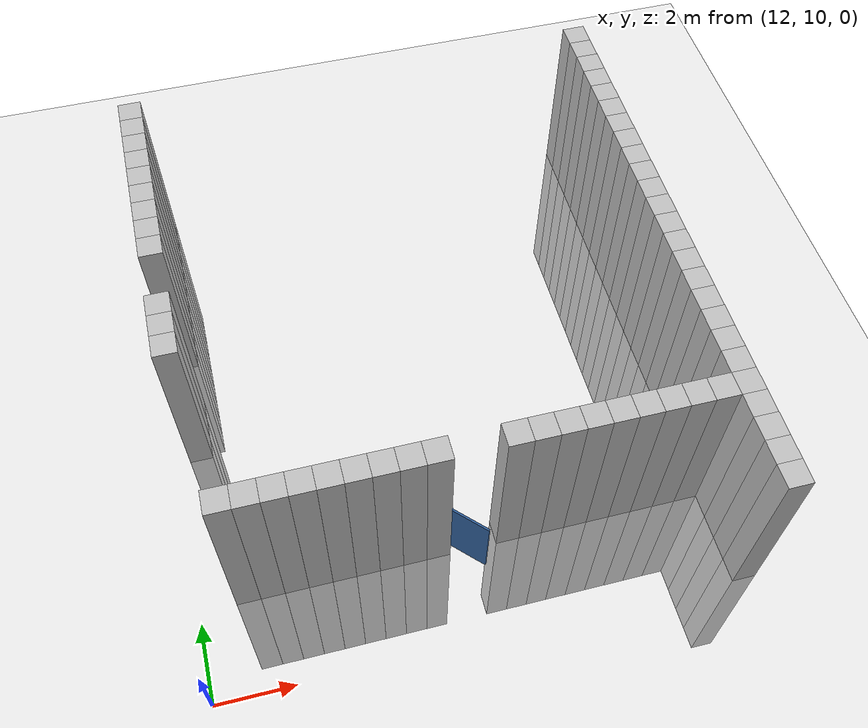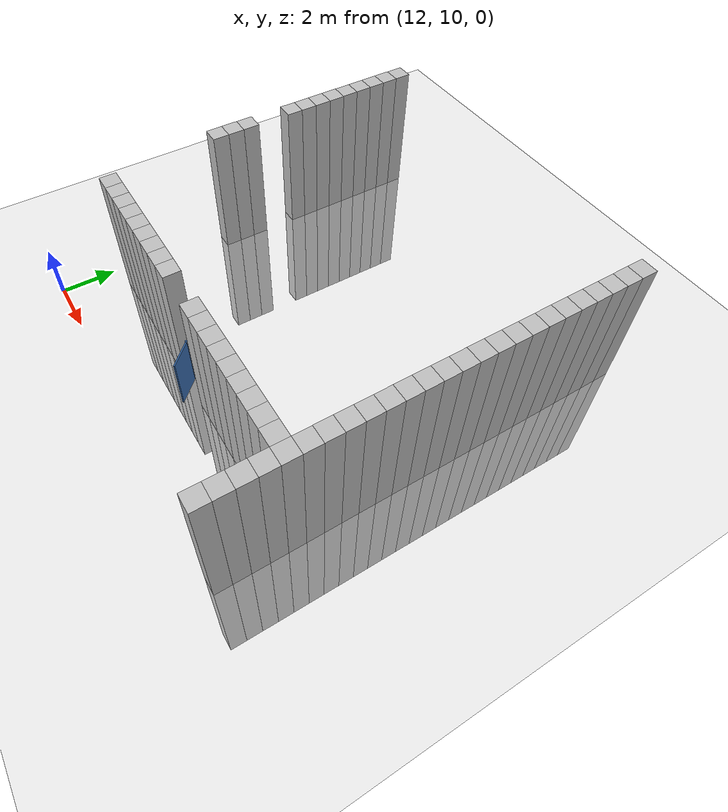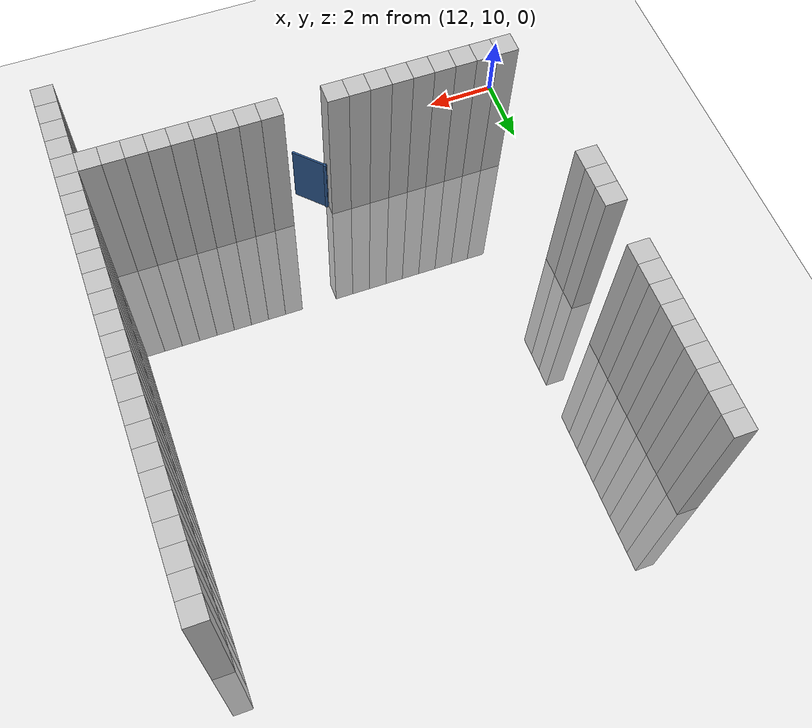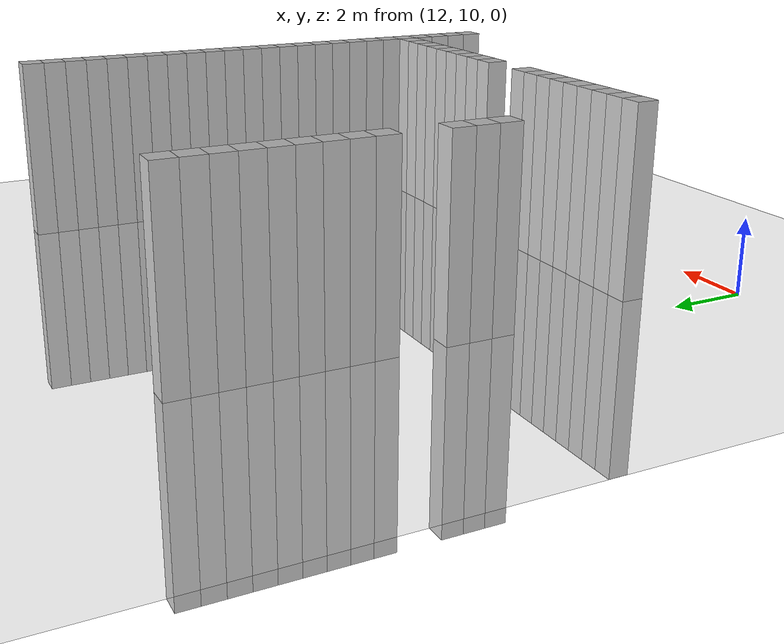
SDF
<sdf version="1.6">
 <world name="default">
  <model name="ground_plane">
   <static>1</static>
   <link name="link">
    <collision name="collision">
     <geometry><plane><normal>0 0 1</normal><size>100 100</size></plane></geometry>
     <surface><friction><ode><mu>100</mu><mu2>50</mu2></ode></friction></surface>
    </collision>
    <visual name="visual">
     <cast_shadows>0</cast_shadows>
     <geometry><plane><normal>0 0 1</normal><size>100 100</size></plane></geometry>
     <material>
      <script><uri>file://media/materials/scripts/gazebo.material</uri><name>Gazebo/Grey</name></script>
     </material>
    </visual>
   </link>
  </model>
  <model name="unit_cylinder_131">
   <static>1</static>
   <pose>12.6 16.8 0 0 -0 0</pose>
   <link name="link">
    <inertial>
     <mass>1</mass>
     <inertia><ixx>0.145833</ixx><ixy>0</ixy><ixz>0</ixz><iyy>0.145833</iyy><iyz>0</iyz><izz>0.125</izz></inertia>
    </inertial>
    <collision name="collision"><geometry><box><size>0.6 0.6 10</size></box></geometry></collision>
    <visual name="visual">
     <geometry><box><size>0.6 0.6 10</size></box></geometry>
     <material><ambient>0.753 0.753 0.753 1</ambient><diffuse>0.753 0.753 0.753 1</diffuse></material>
     <material>
      <script><name>Gazebo/Grey</name><uri>file://media/materials/scripts/gazebo.material</uri></script>
     </material>
    </visual>
   </link>
  </model>
  <model name="unit_cylinder_132">
   <static>1</static>
   <pose>12.6 17.4 0 0 -0 0</pose>
   <link name="link">
    <inertial>
     <mass>1</mass>
     <inertia><ixx>0.145833</ixx><ixy>0</ixy><ixz>0</ixz><iyy>0.145833</iyy><iyz>0</iyz><izz>0.125</izz></inertia>
    </inertial>
    <collision name="collision"><geometry><box><size>0.6 0.6 10</size></box></geometry></collision>
    <visual name="visual">
     <geometry><box><size>0.6 0.6 10</size></box></geometry>
     <material><ambient>0.753 0.753 0.753 1</ambient><diffuse>0.753 0.753 0.753 1</diffuse></material>
     <material>
      <script><name>Gazebo/Grey</name><uri>file://media/materials/scripts/gazebo.material</uri></script>
     </material>
    </visual>
   </link>
  </model>
  <model name="unit_cylinder_133">
   <static>1</static>
   <pose>12.6 18 0 0 -0 0</pose>
   <link name="link">
    <inertial>
     <mass>1</mass>
     <inertia><ixx>0.145833</ixx><ixy>0</ixy><ixz>0</ixz><iyy>0.145833</iyy><iyz>0</iyz><izz>0.125</izz></inertia>
    </inertial>
    <collision name="collision"><geometry><box><size>0.6 0.6 10</size></box></geometry></collision>
    <visual name="visual">
     <geometry><box><size>0.6 0.6 10</size></box></geometry>
     <material><ambient>0.753 0.753 0.753 1</ambient><diffuse>0.753 0.753 0.753 1</diffuse></material>
     <material>
      <script><name>Gazebo/Grey</name><uri>file://media/materials/scripts/gazebo.material</uri></script>
     </material>
    </visual>
   </link>
  </model>
  <model name="unit_cylinder_136">
   <static>1</static>
   <pose>12.6 19.8 0 0 -0 0</pose>
   <link name="link">
    <inertial>
     <mass>1</mass>
     <inertia><ixx>0.145833</ixx><ixy>0</ixy><ixz>0</ixz><iyy>0.145833</iyy><iyz>0</iyz><izz>0.125</izz></inertia>
    </inertial>
    <collision name="collision"><geometry><box><size>0.6 0.6 10</size></box></geometry></collision>
    <visual name="visual">
     <geometry><box><size>0.6 0.6 10</size></box></geometry>
     <material><ambient>0.753 0.753 0.753 1</ambient><diffuse>0.753 0.753 0.753 1</diffuse></material>
     <material>
      <script><name>Gazebo/Grey</name><uri>file://media/materials/scripts/gazebo.material</uri></script>
     </material>
    </visual>
   </link>
  </model>
  <model name="unit_cylinder_137">
   <static>1</static>
   <pose>12.6 20.4 0 0 -0 0</pose>
   <link name="link">
    <inertial>
     <mass>1</mass>
     <inertia><ixx>0.145833</ixx><ixy>0</ixy><ixz>0</ixz><iyy>0.145833</iyy><iyz>0</iyz><izz>0.125</izz></inertia>
    </inertial>
    <collision name="collision"><geometry><box><size>0.6 0.6 10</size></box></geometry></collision>
    <visual name="visual">
     <geometry><box><size>0.6 0.6 10</size></box></geometry>
     <material><ambient>0.753 0.753 0.753 1</ambient><diffuse>0.753 0.753 0.753 1</diffuse></material>
     <material>
      <script><name>Gazebo/Grey</name><uri>file://media/materials/scripts/gazebo.material</uri></script>
     </material>
    </visual>
   </link>
  </model>
  <model name="unit_cylinder_138">
   <static>1</static>
   <pose>12.6 21 0 0 -0 0</pose>
   <link name="link">
    <inertial>
     <mass>1</mass>
     <inertia><ixx>0.145833</ixx><ixy>0</ixy><ixz>0</ixz><iyy>0.145833</iyy><iyz>0</iyz><izz>0.125</izz></inertia>
    </inertial>
    <collision name="collision"><geometry><box><size>0.6 0.6 10</size></box></geometry></collision>
    <visual name="visual">
     <geometry><box><size>0.6 0.6 10</size></box></geometry>
     <material><ambient>0.753 0.753 0.753 1</ambient><diffuse>0.753 0.753 0.753 1</diffuse></material>
     <material>
      <script><name>Gazebo/Grey</name><uri>file://media/materials/scripts/gazebo.material</uri></script>
     </material>
    </visual>
   </link>
  </model>
  <model name="unit_cylinder_139">
   <static>1</static>
   <pose>12.6 21.6 0 0 -0 0</pose>
   <link name="link">
    <inertial>
     <mass>1</mass>
     <inertia><ixx>0.145833</ixx><ixy>0</ixy><ixz>0</ixz><iyy>0.145833</iyy><iyz>0</iyz><izz>0.125</izz></inertia>
    </inertial>
    <collision name="collision"><geometry><box><size>0.6 0.6 10</size></box></geometry></collision>
    <visual name="visual">
     <geometry><box><size>0.6 0.6 10</size></box></geometry>
     <material><ambient>0.753 0.753 0.753 1</ambient><diffuse>0.753 0.753 0.753 1</diffuse></material>
     <material>
      <script><name>Gazebo/Grey</name><uri>file://media/materials/scripts/gazebo.material</uri></script>
     </material>
    </visual>
   </link>
  </model>
  <model name="unit_cylinder_140">
   <static>1</static>
   <pose>12.6 22.2 0 0 -0 0</pose>
   <link name="link">
    <inertial>
     <mass>1</mass>
     <inertia><ixx>0.145833</ixx><ixy>0</ixy><ixz>0</ixz><iyy>0.145833</iyy><iyz>0</iyz><izz>0.125</izz></inertia>
    </inertial>
    <collision name="collision"><geometry><box><size>0.6 0.6 10</size></box></geometry></collision>
    <visual name="visual">
     <geometry><box><size>0.6 0.6 10</size></box></geometry>
     <material><ambient>0.753 0.753 0.753 1</ambient><diffuse>0.753 0.753 0.753 1</diffuse></material>
     <material>
      <script><name>Gazebo/Grey</name><uri>file://media/materials/scripts/gazebo.material</uri></script>
     </material>
    </visual>
   </link>
  </model>
  <model name="unit_cylinder_141">
   <static>1</static>
   <pose>12.6 22.8 0 0 -0 0</pose>
   <link name="link">
    <inertial>
     <mass>1</mass>
     <inertia><ixx>0.145833</ixx><ixy>0</ixy><ixz>0</ixz><iyy>0.145833</iyy><iyz>0</iyz><izz>0.125</izz></inertia>
    </inertial>
    <collision name="collision"><geometry><box><size>0.6 0.6 10</size></box></geometry></collision>
    <visual name="visual">
     <geometry><box><size>0.6 0.6 10</size></box></geometry>
     <material><ambient>0.753 0.753 0.753 1</ambient><diffuse>0.753 0.753 0.753 1</diffuse></material>
     <material>
      <script><name>Gazebo/Grey</name><uri>file://media/materials/scripts/gazebo.material</uri></script>
     </material>
    </visual>
   </link>
  </model>
  <model name="unit_cylinder_142">
   <static>1</static>
   <pose>12.6 23.4 0 0 -0 0</pose>
   <link name="link">
    <inertial>
     <mass>1</mass>
     <inertia><ixx>0.145833</ixx><ixy>0</ixy><ixz>0</ixz><iyy>0.145833</iyy><iyz>0</iyz><izz>0.125</izz></inertia>
    </inertial>
    <collision name="collision"><geometry><box><size>0.6 0.6 10</size></box></geometry></collision>
    <visual name="visual">
     <geometry><box><size>0.6 0.6 10</size></box></geometry>
     <material><ambient>0.753 0.753 0.753 1</ambient><diffuse>0.753 0.753 0.753 1</diffuse></material>
     <material>
      <script><name>Gazebo/Grey</name><uri>file://media/materials/scripts/gazebo.material</uri></script>
     </material>
    </visual>
   </link>
  </model>
  <model name="unit_cylinder_143">
   <static>1</static>
   <pose>12.6 24 0 0 -0 0</pose>
   <link name="link">
    <inertial>
     <mass>1</mass>
     <inertia><ixx>0.145833</ixx><ixy>0</ixy><ixz>0</ixz><iyy>0.145833</iyy><iyz>0</iyz><izz>0.125</izz></inertia>
    </inertial>
    <collision name="collision"><geometry><box><size>0.6 0.6 10</size></box></geometry></collision>
    <visual name="visual">
     <geometry><box><size>0.6 0.6 10</size></box></geometry>
     <material><ambient>0.753 0.753 0.753 1</ambient><diffuse>0.753 0.753 0.753 1</diffuse></material>
     <material>
      <script><name>Gazebo/Grey</name><uri>file://media/materials/scripts/gazebo.material</uri></script>
     </material>
    </visual>
   </link>
  </model>
  <model name="unit_cylinder_144">
   <static>1</static>
   <pose>12.6 24.6 0 0 -0 0</pose>
   <link name="link">
    <inertial>
     <mass>1</mass>
     <inertia><ixx>0.145833</ixx><ixy>0</ixy><ixz>0</ixz><iyy>0.145833</iyy><iyz>0</iyz><izz>0.125</izz></inertia>
    </inertial>
    <collision name="collision"><geometry><box><size>0.6 0.6 10</size></box></geometry></collision>
    <visual name="visual">
     <geometry><box><size>0.6 0.6 10</size></box></geometry>
     <material><ambient>0.753 0.753 0.753 1</ambient><diffuse>0.753 0.753 0.753 1</diffuse></material>
     <material>
      <script><name>Gazebo/Grey</name><uri>file://media/materials/scripts/gazebo.material</uri></script>
     </material>
    </visual>
   </link>
  </model>
  <model name="unit_cylinder_147">
   <static>1</static>
   <pose>13.2 12.6 0 0 -0 0</pose>
   <link name="link">
    <inertial>
     <mass>1</mass>
     <inertia><ixx>0.145833</ixx><ixy>0</ixy><ixz>0</ixz><iyy>0.145833</iyy><iyz>0</iyz><izz>0.125</izz></inertia>
    </inertial>
    <collision name="collision"><geometry><box><size>0.6 0.6 10</size></box></geometry></collision>
    <visual name="visual">
     <geometry><box><size>0.6 0.6 10</size></box></geometry>
     <material><ambient>0.753 0.753 0.753 1</ambient><diffuse>0.753 0.753 0.753 1</diffuse></material>
     <material>
      <script><name>Gazebo/Grey</name><uri>file://media/materials/scripts/gazebo.material</uri></script>
     </material>
    </visual>
   </link>
  </model>
  <model name="unit_cylinder_150">
   <static>1</static>
   <pose>13.8 12.6 0 0 -0 0</pose>
   <link name="link">
    <inertial>
     <mass>1</mass>
     <inertia><ixx>0.145833</ixx><ixy>0</ixy><ixz>0</ixz><iyy>0.145833</iyy><iyz>0</iyz><izz>0.125</izz></inertia>
    </inertial>
    <collision name="collision"><geometry><box><size>0.6 0.6 10</size></box></geometry></collision>
    <visual name="visual">
     <geometry><box><size>0.6 0.6 10</size></box></geometry>
     <material><ambient>0.753 0.753 0.753 1</ambient><diffuse>0.753 0.753 0.753 1</diffuse></material>
     <material>
      <script><name>Gazebo/Grey</name><uri>file://media/materials/scripts/gazebo.material</uri></script>
     </material>
    </visual>
   </link>
  </model>
  <model name="unit_cylinder_153">
   <static>1</static>
   <pose>14.4 12.6 0 0 -0 0</pose>
   <link name="link">
    <inertial>
     <mass>1</mass>
     <inertia><ixx>0.145833</ixx><ixy>0</ixy><ixz>0</ixz><iyy>0.145833</iyy><iyz>0</iyz><izz>0.125</izz></inertia>
    </inertial>
    <collision name="collision"><geometry><box><size>0.6 0.6 10</size></box></geometry></collision>
    <visual name="visual">
     <geometry><box><size>0.6 0.6 10</size></box></geometry>
     <material><ambient>0.753 0.753 0.753 1</ambient><diffuse>0.753 0.753 0.753 1</diffuse></material>
     <material>
      <script><name>Gazebo/Grey</name><uri>file://media/materials/scripts/gazebo.material</uri></script>
     </material>
    </visual>
   </link>
  </model>
  <model name="unit_cylinder_156">
   <static>1</static>
   <pose>15 12.6 0 0 -0 0</pose>
   <link name="link">
    <inertial>
     <mass>1</mass>
     <inertia><ixx>0.145833</ixx><ixy>0</ixy><ixz>0</ixz><iyy>0.145833</iyy><iyz>0</iyz><izz>0.125</izz></inertia>
    </inertial>
    <collision name="collision"><geometry><box><size>0.6 0.6 10</size></box></geometry></collision>
    <visual name="visual">
     <geometry><box><size>0.6 0.6 10</size></box></geometry>
     <material><ambient>0.753 0.753 0.753 1</ambient><diffuse>0.753 0.753 0.753 1</diffuse></material>
     <material>
      <script><name>Gazebo/Grey</name><uri>file://media/materials/scripts/gazebo.material</uri></script>
     </material>
    </visual>
   </link>
  </model>
  <model name="unit_cylinder_159">
   <static>1</static>
   <pose>15.6 12.6 0 0 -0 0</pose>
   <link name="link">
    <inertial>
     <mass>1</mass>
     <inertia><ixx>0.145833</ixx><ixy>0</ixy><ixz>0</ixz><iyy>0.145833</iyy><iyz>0</iyz><izz>0.125</izz></inertia>
    </inertial>
    <collision name="collision"><geometry><box><size>0.6 0.6 10</size></box></geometry></collision>
    <visual name="visual">
     <geometry><box><size>0.6 0.6 10</size></box></geometry>
     <material><ambient>0.753 0.753 0.753 1</ambient><diffuse>0.753 0.753 0.753 1</diffuse></material>
     <material>
      <script><name>Gazebo/Grey</name><uri>file://media/materials/scripts/gazebo.material</uri></script>
     </material>
    </visual>
   </link>
  </model>
  <model name="unit_cylinder_162">
   <static>1</static>
   <pose>16.2 12.6 0 0 -0 0</pose>
   <link name="link">
    <inertial>
     <mass>1</mass>
     <inertia><ixx>0.145833</ixx><ixy>0</ixy><ixz>0</ixz><iyy>0.145833</iyy><iyz>0</iyz><izz>0.125</izz></inertia>
    </inertial>
    <collision name="collision"><geometry><box><size>0.6 0.6 10</size></box></geometry></collision>
    <visual name="visual">
     <geometry><box><size>0.6 0.6 10</size></box></geometry>
     <material><ambient>0.753 0.753 0.753 1</ambient><diffuse>0.753 0.753 0.753 1</diffuse></material>
     <material>
      <script><name>Gazebo/Grey</name><uri>file://media/materials/scripts/gazebo.material</uri></script>
     </material>
    </visual>
   </link>
  </model>
  <model name="unit_cylinder_165">
   <static>1</static>
   <pose>16.8 12.6 0 0 -0 0</pose>
   <link name="link">
    <inertial>
     <mass>1</mass>
     <inertia><ixx>0.145833</ixx><ixy>0</ixy><ixz>0</ixz><iyy>0.145833</iyy><iyz>0</iyz><izz>0.125</izz></inertia>
    </inertial>
    <collision name="collision"><geometry><box><size>0.6 0.6 10</size></box></geometry></collision>
    <visual name="visual">
     <geometry><box><size>0.6 0.6 10</size></box></geometry>
     <material><ambient>0.753 0.753 0.753 1</ambient><diffuse>0.753 0.753 0.753 1</diffuse></material>
     <material>
      <script><name>Gazebo/Grey</name><uri>file://media/materials/scripts/gazebo.material</uri></script>
     </material>
    </visual>
   </link>
  </model>
  <model name="unit_cylinder_168">
   <static>1</static>
   <pose>17.4 12.6 0 0 -0 0</pose>
   <link name="link">
    <inertial>
     <mass>1</mass>
     <inertia><ixx>0.145833</ixx><ixy>0</ixy><ixz>0</ixz><iyy>0.145833</iyy><iyz>0</iyz><izz>0.125</izz></inertia>
    </inertial>
    <collision name="collision"><geometry><box><size>0.6 0.6 10</size></box></geometry></collision>
    <visual name="visual">
     <geometry><box><size>0.6 0.6 10</size></box></geometry>
     <material><ambient>0.753 0.753 0.753 1</ambient><diffuse>0.753 0.753 0.753 1</diffuse></material>
     <material>
      <script><name>Gazebo/Grey</name><uri>file://media/materials/scripts/gazebo.material</uri></script>
     </material>
    </visual>
   </link>
  </model>
  <model name="unit_cylinder_171">
   <static>1</static>
   <pose>18 12.6 0 0 -0 0</pose>
   <link name="link">
    <inertial>
     <mass>1</mass>
     <inertia><ixx>0.145833</ixx><ixy>0</ixy><ixz>0</ixz><iyy>0.145833</iyy><iyz>0</iyz><izz>0.125</izz></inertia>
    </inertial>
    <collision name="collision"><geometry><box><size>0.6 0.6 10</size></box></geometry></collision>
    <visual name="visual">
     <geometry><box><size>0.6 0.6 10</size></box></geometry>
     <material><ambient>0.753 0.753 0.753 1</ambient><diffuse>0.753 0.753 0.753 1</diffuse></material>
     <material>
      <script><name>Gazebo/Grey</name><uri>file://media/materials/scripts/gazebo.material</uri></script>
     </material>
    </visual>
   </link>
  </model>
  <model name="unit_cylinder_180">
   <static>1</static>
   <pose>19.8 12.6 0 0 -0 0</pose>
   <link name="link">
    <inertial>
     <mass>1</mass>
     <inertia><ixx>0.145833</ixx><ixy>0</ixy><ixz>0</ixz><iyy>0.145833</iyy><iyz>0</iyz><izz>0.125</izz></inertia>
    </inertial>
    <collision name="collision"><geometry><box><size>0.6 0.6 10</size></box></geometry></collision>
    <visual name="visual">
     <geometry><box><size>0.6 0.6 10</size></box></geometry>
     <material><ambient>0.753 0.753 0.753 1</ambient><diffuse>0.753 0.753 0.753 1</diffuse></material>
     <material>
      <script><name>Gazebo/Grey</name><uri>file://media/materials/scripts/gazebo.material</uri></script>
     </material>
    </visual>
   </link>
  </model>
  <model name="unit_cylinder_183">
   <static>1</static>
   <pose>20.4 12.6 0 0 -0 0</pose>
   <link name="link">
    <inertial>
     <mass>1</mass>
     <inertia><ixx>0.145833</ixx><ixy>0</ixy><ixz>0</ixz><iyy>0.145833</iyy><iyz>0</iyz><izz>0.125</izz></inertia>
    </inertial>
    <collision name="collision"><geometry><box><size>0.6 0.6 10</size></box></geometry></collision>
    <visual name="visual">
     <geometry><box><size>0.6 0.6 10</size></box></geometry>
     <material><ambient>0.753 0.753 0.753 1</ambient><diffuse>0.753 0.753 0.753 1</diffuse></material>
     <material>
      <script><name>Gazebo/Grey</name><uri>file://media/materials/scripts/gazebo.material</uri></script>
     </material>
    </visual>
   </link>
  </model>
  <model name="unit_cylinder_186">
   <static>1</static>
   <pose>21 12.6 0 0 -0 0</pose>
   <link name="link">
    <inertial>
     <mass>1</mass>
     <inertia><ixx>0.145833</ixx><ixy>0</ixy><ixz>0</ixz><iyy>0.145833</iyy><iyz>0</iyz><izz>0.125</izz></inertia>
    </inertial>
    <collision name="collision"><geometry><box><size>0.6 0.6 10</size></box></geometry></collision>
    <visual name="visual">
     <geometry><box><size>0.6 0.6 10</size></box></geometry>
     <material><ambient>0.753 0.753 0.753 1</ambient><diffuse>0.753 0.753 0.753 1</diffuse></material>
     <material>
      <script><name>Gazebo/Grey</name><uri>file://media/materials/scripts/gazebo.material</uri></script>
     </material>
    </visual>
   </link>
  </model>
  <model name="unit_cylinder_189">
   <static>1</static>
   <pose>21.6 12.6 0 0 -0 0</pose>
   <link name="link">
    <inertial>
     <mass>1</mass>
     <inertia><ixx>0.145833</ixx><ixy>0</ixy><ixz>0</ixz><iyy>0.145833</iyy><iyz>0</iyz><izz>0.125</izz></inertia>
    </inertial>
    <collision name="collision"><geometry><box><size>0.6 0.6 10</size></box></geometry></collision>
    <visual name="visual">
     <geometry><box><size>0.6 0.6 10</size></box></geometry>
     <material><ambient>0.753 0.753 0.753 1</ambient><diffuse>0.753 0.753 0.753 1</diffuse></material>
     <material>
      <script><name>Gazebo/Grey</name><uri>file://media/materials/scripts/gazebo.material</uri></script>
     </material>
    </visual>
   </link>
  </model>
  <model name="unit_cylinder_192">
   <static>1</static>
   <pose>22.2 12.6 0 0 -0 0</pose>
   <link name="link">
    <inertial>
     <mass>1</mass>
     <inertia><ixx>0.145833</ixx><ixy>0</ixy><ixz>0</ixz><iyy>0.145833</iyy><iyz>0</iyz><izz>0.125</izz></inertia>
    </inertial>
    <collision name="collision"><geometry><box><size>0.6 0.6 10</size></box></geometry></collision>
    <visual name="visual">
     <geometry><box><size>0.6 0.6 10</size></box></geometry>
     <material><ambient>0.753 0.753 0.753 1</ambient><diffuse>0.753 0.753 0.753 1</diffuse></material>
     <material>
      <script><name>Gazebo/Grey</name><uri>file://media/materials/scripts/gazebo.material</uri></script>
     </material>
    </visual>
   </link>
  </model>
  <model name="unit_cylinder_195">
   <static>1</static>
   <pose>22.8 12.6 0 0 -0 0</pose>
   <link name="link">
    <inertial>
     <mass>1</mass>
     <inertia><ixx>0.145833</ixx><ixy>0</ixy><ixz>0</ixz><iyy>0.145833</iyy><iyz>0</iyz><izz>0.125</izz></inertia>
    </inertial>
    <collision name="collision"><geometry><box><size>0.6 0.6 10</size></box></geometry></collision>
    <visual name="visual">
     <geometry><box><size>0.6 0.6 10</size></box></geometry>
     <material><ambient>0.753 0.753 0.753 1</ambient><diffuse>0.753 0.753 0.753 1</diffuse></material>
     <material>
      <script><name>Gazebo/Grey</name><uri>file://media/materials/scripts/gazebo.material</uri></script>
     </material>
    </visual>
   </link>
  </model>
  <model name="unit_cylinder_198">
   <static>1</static>
   <pose>23.4 12.6 0 0 -0 0</pose>
   <link name="link">
    <inertial>
     <mass>1</mass>
     <inertia><ixx>0.145833</ixx><ixy>0</ixy><ixz>0</ixz><iyy>0.145833</iyy><iyz>0</iyz><izz>0.125</izz></inertia>
    </inertial>
    <collision name="collision"><geometry><box><size>0.6 0.6 10</size></box></geometry></collision>
    <visual name="visual">
     <geometry><box><size>0.6 0.6 10</size></box></geometry>
     <material><ambient>0.753 0.753 0.753 1</ambient><diffuse>0.753 0.753 0.753 1</diffuse></material>
     <material>
      <script><name>Gazebo/Grey</name><uri>file://media/materials/scripts/gazebo.material</uri></script>
     </material>
    </visual>
   </link>
  </model>
  <model name="unit_cylinder_201">
   <static>1</static>
   <pose>24 12.6 0 0 -0 0</pose>
   <link name="link">
    <inertial>
     <mass>1</mass>
     <inertia><ixx>0.145833</ixx><ixy>0</ixy><ixz>0</ixz><iyy>0.145833</iyy><iyz>0</iyz><izz>0.125</izz></inertia>
    </inertial>
    <collision name="collision"><geometry><box><size>0.6 0.6 10</size></box></geometry></collision>
    <visual name="visual">
     <geometry><box><size>0.6 0.6 10</size></box></geometry>
     <material><ambient>0.753 0.753 0.753 1</ambient><diffuse>0.753 0.753 0.753 1</diffuse></material>
     <material>
      <script><name>Gazebo/Grey</name><uri>file://media/materials/scripts/gazebo.material</uri></script>
     </material>
    </visual>
   </link>
  </model>
  <model name="unit_cylinder_204">
   <static>1</static>
   <pose>24.6 12.6 0 0 -0 0</pose>
   <link name="link">
    <inertial>
     <mass>1</mass>
     <inertia><ixx>0.145833</ixx><ixy>0</ixy><ixz>0</ixz><iyy>0.145833</iyy><iyz>0</iyz><izz>0.125</izz></inertia>
    </inertial>
    <collision name="collision"><geometry><box><size>0.6 0.6 10</size></box></geometry></collision>
    <visual name="visual">
     <geometry><box><size>0.6 0.6 10</size></box></geometry>
     <material><ambient>0.753 0.753 0.753 1</ambient><diffuse>0.753 0.753 0.753 1</diffuse></material>
     <material>
      <script><name>Gazebo/Grey</name><uri>file://media/materials/scripts/gazebo.material</uri></script>
     </material>
    </visual>
   </link>
  </model>
  <model name="unit_cylinder_223">
   <static>1</static>
   <pose>25.2 10.2 0 0 -0 0</pose>
   <link name="link">
    <inertial>
     <mass>1</mass>
     <inertia><ixx>0.145833</ixx><ixy>0</ixy><ixz>0</ixz><iyy>0.145833</iyy><iyz>0</iyz><izz>0.125</izz></inertia>
    </inertial>
    <collision name="collision"><geometry><box><size>0.6 0.6 10</size></box></geometry></collision>
    <visual name="visual">
     <geometry><box><size>0.6 0.6 10</size></box></geometry>
     <material><ambient>0.753 0.753 0.753 1</ambient><diffuse>0.753 0.753 0.753 1</diffuse></material>
     <material>
      <script><name>Gazebo/Grey</name><uri>file://media/materials/scripts/gazebo.material</uri></script>
     </material>
    </visual>
   </link>
  </model>
  <model name="unit_cylinder_224">
   <static>1</static>
   <pose>25.2 10.8 0 0 -0 0</pose>
   <link name="link">
    <inertial>
     <mass>1</mass>
     <inertia><ixx>0.145833</ixx><ixy>0</ixy><ixz>0</ixz><iyy>0.145833</iyy><iyz>0</iyz><izz>0.125</izz></inertia>
    </inertial>
    <collision name="collision"><geometry><box><size>0.6 0.6 10</size></box></geometry></collision>
    <visual name="visual">
     <geometry><box><size>0.6 0.6 10</size></box></geometry>
     <material><ambient>0.753 0.753 0.753 1</ambient><diffuse>0.753 0.753 0.753 1</diffuse></material>
     <material>
      <script><name>Gazebo/Grey</name><uri>file://media/materials/scripts/gazebo.material</uri></script>
     </material>
    </visual>
   </link>
  </model>
  <model name="unit_cylinder_225">
   <static>1</static>
   <pose>25.2 11.4 0 0 -0 0</pose>
   <link name="link">
    <inertial>
     <mass>1</mass>
     <inertia><ixx>0.145833</ixx><ixy>0</ixy><ixz>0</ixz><iyy>0.145833</iyy><iyz>0</iyz><izz>0.125</izz></inertia>
    </inertial>
    <collision name="collision"><geometry><box><size>0.6 0.6 10</size></box></geometry></collision>
    <visual name="visual">
     <geometry><box><size>0.6 0.6 10</size></box></geometry>
     <material><ambient>0.753 0.753 0.753 1</ambient><diffuse>0.753 0.753 0.753 1</diffuse></material>
     <material>
      <script><name>Gazebo/Grey</name><uri>file://media/materials/scripts/gazebo.material</uri></script>
     </material>
    </visual>
   </link>
  </model>
  <model name="unit_cylinder_226">
   <static>1</static>
   <pose>25.2 12 0 0 -0 0</pose>
   <link name="link">
    <inertial>
     <mass>1</mass>
     <inertia><ixx>0.145833</ixx><ixy>0</ixy><ixz>0</ixz><iyy>0.145833</iyy><iyz>0</iyz><izz>0.125</izz></inertia>
    </inertial>
    <collision name="collision"><geometry><box><size>0.6 0.6 10</size></box></geometry></collision>
    <visual name="visual">
     <geometry><box><size>0.6 0.6 10</size></box></geometry>
     <material><ambient>0.753 0.753 0.753 1</ambient><diffuse>0.753 0.753 0.753 1</diffuse></material>
     <material>
      <script><name>Gazebo/Grey</name><uri>file://media/materials/scripts/gazebo.material</uri></script>
     </material>
    </visual>
   </link>
  </model>
  <model name="unit_cylinder_227">
   <static>1</static>
   <pose>25.2 12.6 0 0 -0 0</pose>
   <link name="link">
    <inertial>
     <mass>1</mass>
     <inertia><ixx>0.145833</ixx><ixy>0</ixy><ixz>0</ixz><iyy>0.145833</iyy><iyz>0</iyz><izz>0.125</izz></inertia>
    </inertial>
    <collision name="collision"><geometry><box><size>0.6 0.6 10</size></box></geometry></collision>
    <visual name="visual">
     <geometry><box><size>0.6 0.6 10</size></box></geometry>
     <material><ambient>0.753 0.753 0.753 1</ambient><diffuse>0.753 0.753 0.753 1</diffuse></material>
     <material>
      <script><name>Gazebo/Grey</name><uri>file://media/materials/scripts/gazebo.material</uri></script>
     </material>
    </visual>
   </link>
  </model>
  <model name="unit_cylinder_228">
   <static>1</static>
   <pose>25.2 13.2 0 0 -0 0</pose>
   <link name="link">
    <inertial>
     <mass>1</mass>
     <inertia><ixx>0.145833</ixx><ixy>0</ixy><ixz>0</ixz><iyy>0.145833</iyy><iyz>0</iyz><izz>0.125</izz></inertia>
    </inertial>
    <collision name="collision"><geometry><box><size>0.6 0.6 10</size></box></geometry></collision>
    <visual name="visual">
     <geometry><box><size>0.6 0.6 10</size></box></geometry>
     <material><ambient>0.753 0.753 0.753 1</ambient><diffuse>0.753 0.753 0.753 1</diffuse></material>
     <material>
      <script><name>Gazebo/Grey</name><uri>file://media/materials/scripts/gazebo.material</uri></script>
     </material>
    </visual>
   </link>
  </model>
  <model name="unit_cylinder_229">
   <static>1</static>
   <pose>25.2 13.8 0 0 -0 0</pose>
   <link name="link">
    <inertial>
     <mass>1</mass>
     <inertia><ixx>0.145833</ixx><ixy>0</ixy><ixz>0</ixz><iyy>0.145833</iyy><iyz>0</iyz><izz>0.125</izz></inertia>
    </inertial>
    <collision name="collision"><geometry><box><size>0.6 0.6 10</size></box></geometry></collision>
    <visual name="visual">
     <geometry><box><size>0.6 0.6 10</size></box></geometry>
     <material><ambient>0.753 0.753 0.753 1</ambient><diffuse>0.753 0.753 0.753 1</diffuse></material>
     <material>
      <script><name>Gazebo/Grey</name><uri>file://media/materials/scripts/gazebo.material</uri></script>
     </material>
    </visual>
   </link>
  </model>
  <model name="unit_cylinder_230">
   <static>1</static>
   <pose>25.2 14.4 0 0 -0 0</pose>
   <link name="link">
    <inertial>
     <mass>1</mass>
     <inertia><ixx>0.145833</ixx><ixy>0</ixy><ixz>0</ixz><iyy>0.145833</iyy><iyz>0</iyz><izz>0.125</izz></inertia>
    </inertial>
    <collision name="collision"><geometry><box><size>0.6 0.6 10</size></box></geometry></collision>
    <visual name="visual">
     <geometry><box><size>0.6 0.6 10</size></box></geometry>
     <material><ambient>0.753 0.753 0.753 1</ambient><diffuse>0.753 0.753 0.753 1</diffuse></material>
     <material>
      <script><name>Gazebo/Grey</name><uri>file://media/materials/scripts/gazebo.material</uri></script>
     </material>
    </visual>
   </link>
  </model>
  <model name="unit_cylinder_231">
   <static>1</static>
   <pose>25.2 15 0 0 -0 0</pose>
   <link name="link">
    <inertial>
     <mass>1</mass>
     <inertia><ixx>0.145833</ixx><ixy>0</ixy><ixz>0</ixz><iyy>0.145833</iyy><iyz>0</iyz><izz>0.125</izz></inertia>
    </inertial>
    <collision name="collision"><geometry><box><size>0.6 0.6 10</size></box></geometry></collision>
    <visual name="visual">
     <geometry><box><size>0.6 0.6 10</size></box></geometry>
     <material><ambient>0.753 0.753 0.753 1</ambient><diffuse>0.753 0.753 0.753 1</diffuse></material>
     <material>
      <script><name>Gazebo/Grey</name><uri>file://media/materials/scripts/gazebo.material</uri></script>
     </material>
    </visual>
   </link>
  </model>
  <model name="unit_cylinder_232">
   <static>1</static>
   <pose>25.2 15.6 0 0 -0 0</pose>
   <link name="link">
    <inertial>
     <mass>1</mass>
     <inertia><ixx>0.145833</ixx><ixy>0</ixy><ixz>0</ixz><iyy>0.145833</iyy><iyz>0</iyz><izz>0.125</izz></inertia>
    </inertial>
    <collision name="collision"><geometry><box><size>0.6 0.6 10</size></box></geometry></collision>
    <visual name="visual">
     <geometry><box><size>0.6 0.6 10</size></box></geometry>
     <material><ambient>0.753 0.753 0.753 1</ambient><diffuse>0.753 0.753 0.753 1</diffuse></material>
     <material>
      <script><name>Gazebo/Grey</name><uri>file://media/materials/scripts/gazebo.material</uri></script>
     </material>
    </visual>
   </link>
  </model>
  <model name="unit_cylinder_233">
   <static>1</static>
   <pose>25.2 16.2 0 0 -0 0</pose>
   <link name="link">
    <inertial>
     <mass>1</mass>
     <inertia><ixx>0.145833</ixx><ixy>0</ixy><ixz>0</ixz><iyy>0.145833</iyy><iyz>0</iyz><izz>0.125</izz></inertia>
    </inertial>
    <collision name="collision"><geometry><box><size>0.6 0.6 10</size></box></geometry></collision>
    <visual name="visual">
     <geometry><box><size>0.6 0.6 10</size></box></geometry>
     <material><ambient>0.753 0.753 0.753 1</ambient><diffuse>0.753 0.753 0.753 1</diffuse></material>
     <material>
      <script><name>Gazebo/Grey</name><uri>file://media/materials/scripts/gazebo.material</uri></script>
     </material>
    </visual>
   </link>
  </model>
  <model name="unit_cylinder_234">
   <static>1</static>
   <pose>25.2 16.8 0 0 -0 0</pose>
   <link name="link">
    <inertial>
     <mass>1</mass>
     <inertia><ixx>0.145833</ixx><ixy>0</ixy><ixz>0</ixz><iyy>0.145833</iyy><iyz>0</iyz><izz>0.125</izz></inertia>
    </inertial>
    <collision name="collision"><geometry><box><size>0.6 0.6 10</size></box></geometry></collision>
    <visual name="visual">
     <geometry><box><size>0.6 0.6 10</size></box></geometry>
     <material><ambient>0.753 0.753 0.753 1</ambient><diffuse>0.753 0.753 0.753 1</diffuse></material>
     <material>
      <script><name>Gazebo/Grey</name><uri>file://media/materials/scripts/gazebo.material</uri></script>
     </material>
    </visual>
   </link>
  </model>
  <model name="unit_cylinder_235">
   <static>1</static>
   <pose>25.2 17.4 0 0 -0 0</pose>
   <link name="link">
    <inertial>
     <mass>1</mass>
     <inertia><ixx>0.145833</ixx><ixy>0</ixy><ixz>0</ixz><iyy>0.145833</iyy><iyz>0</iyz><izz>0.125</izz></inertia>
    </inertial>
    <collision name="collision"><geometry><box><size>0.6 0.6 10</size></box></geometry></collision>
    <visual name="visual">
     <geometry><box><size>0.6 0.6 10</size></box></geometry>
     <material><ambient>0.753 0.753 0.753 1</ambient><diffuse>0.753 0.753 0.753 1</diffuse></material>
     <material>
      <script><name>Gazebo/Grey</name><uri>file://media/materials/scripts/gazebo.material</uri></script>
     </material>
    </visual>
   </link>
  </model>
  <model name="unit_cylinder_236">
   <static>1</static>
   <pose>25.2 18 0 0 -0 0</pose>
   <link name="link">
    <inertial>
     <mass>1</mass>
     <inertia><ixx>0.145833</ixx><ixy>0</ixy><ixz>0</ixz><iyy>0.145833</iyy><iyz>0</iyz><izz>0.125</izz></inertia>
    </inertial>
    <collision name="collision"><geometry><box><size>0.6 0.6 10</size></box></geometry></collision>
    <visual name="visual">
     <geometry><box><size>0.6 0.6 10</size></box></geometry>
     <material><ambient>0.753 0.753 0.753 1</ambient><diffuse>0.753 0.753 0.753 1</diffuse></material>
     <material>
      <script><name>Gazebo/Grey</name><uri>file://media/materials/scripts/gazebo.material</uri></script>
     </material>
    </visual>
   </link>
  </model>
  <model name="unit_cylinder_237">
   <static>1</static>
   <pose>25.2 18.6 0 0 -0 0</pose>
   <link name="link">
    <inertial>
     <mass>1</mass>
     <inertia><ixx>0.145833</ixx><ixy>0</ixy><ixz>0</ixz><iyy>0.145833</iyy><iyz>0</iyz><izz>0.125</izz></inertia>
    </inertial>
    <collision name="collision"><geometry><box><size>0.6 0.6 10</size></box></geometry></collision>
    <visual name="visual">
     <geometry><box><size>0.6 0.6 10</size></box></geometry>
     <material><ambient>0.753 0.753 0.753 1</ambient><diffuse>0.753 0.753 0.753 1</diffuse></material>
     <material>
      <script><name>Gazebo/Grey</name><uri>file://media/materials/scripts/gazebo.material</uri></script>
     </material>
    </visual>
   </link>
  </model>
  <model name="unit_cylinder_238">
   <static>1</static>
   <pose>25.2 19.2 0 0 -0 0</pose>
   <link name="link">
    <inertial>
     <mass>1</mass>
     <inertia><ixx>0.145833</ixx><ixy>0</ixy><ixz>0</ixz><iyy>0.145833</iyy><iyz>0</iyz><izz>0.125</izz></inertia>
    </inertial>
    <collision name="collision"><geometry><box><size>0.6 0.6 10</size></box></geometry></collision>
    <visual name="visual">
     <geometry><box><size>0.6 0.6 10</size></box></geometry>
     <material><ambient>0.753 0.753 0.753 1</ambient><diffuse>0.753 0.753 0.753 1</diffuse></material>
     <material>
      <script><name>Gazebo/Grey</name><uri>file://media/materials/scripts/gazebo.material</uri></script>
     </material>
    </visual>
   </link>
  </model>
  <model name="unit_cylinder_239">
   <static>1</static>
   <pose>25.2 19.8 0 0 -0 0</pose>
   <link name="link">
    <inertial>
     <mass>1</mass>
     <inertia><ixx>0.145833</ixx><ixy>0</ixy><ixz>0</ixz><iyy>0.145833</iyy><iyz>0</iyz><izz>0.125</izz></inertia>
    </inertial>
    <collision name="collision"><geometry><box><size>0.6 0.6 10</size></box></geometry></collision>
    <visual name="visual">
     <geometry><box><size>0.6 0.6 10</size></box></geometry>
     <material><ambient>0.753 0.753 0.753 1</ambient><diffuse>0.753 0.753 0.753 1</diffuse></material>
     <material>
      <script><name>Gazebo/Grey</name><uri>file://media/materials/scripts/gazebo.material</uri></script>
     </material>
    </visual>
   </link>
  </model>
  <model name="unit_cylinder_240">
   <static>1</static>
   <pose>25.2 20.4 0 0 -0 0</pose>
   <link name="link">
    <inertial>
     <mass>1</mass>
     <inertia><ixx>0.145833</ixx><ixy>0</ixy><ixz>0</ixz><iyy>0.145833</iyy><iyz>0</iyz><izz>0.125</izz></inertia>
    </inertial>
    <collision name="collision"><geometry><box><size>0.6 0.6 10</size></box></geometry></collision>
    <visual name="visual">
     <geometry><box><size>0.6 0.6 10</size></box></geometry>
     <material><ambient>0.753 0.753 0.753 1</ambient><diffuse>0.753 0.753 0.753 1</diffuse></material>
     <material>
      <script><name>Gazebo/Grey</name><uri>file://media/materials/scripts/gazebo.material</uri></script>
     </material>
    </visual>
   </link>
  </model>
  <model name="unit_cylinder_241">
   <static>1</static>
   <pose>25.2 21 0 0 -0 0</pose>
   <link name="link">
    <inertial>
     <mass>1</mass>
     <inertia><ixx>0.145833</ixx><ixy>0</ixy><ixz>0</ixz><iyy>0.145833</iyy><iyz>0</iyz><izz>0.125</izz></inertia>
    </inertial>
    <collision name="collision"><geometry><box><size>0.6 0.6 10</size></box></geometry></collision>
    <visual name="visual">
     <geometry><box><size>0.6 0.6 10</size></box></geometry>
     <material><ambient>0.753 0.753 0.753 1</ambient><diffuse>0.753 0.753 0.753 1</diffuse></material>
     <material>
      <script><name>Gazebo/Grey</name><uri>file://media/materials/scripts/gazebo.material</uri></script>
     </material>
    </visual>
   </link>
  </model>
  <model name="unit_cylinder_242">
   <static>1</static>
   <pose>25.2 21.6 0 0 -0 0</pose>
   <link name="link">
    <inertial>
     <mass>1</mass>
     <inertia><ixx>0.145833</ixx><ixy>0</ixy><ixz>0</ixz><iyy>0.145833</iyy><iyz>0</iyz><izz>0.125</izz></inertia>
    </inertial>
    <collision name="collision"><geometry><box><size>0.6 0.6 10</size></box></geometry></collision>
    <visual name="visual">
     <geometry><box><size>0.6 0.6 10</size></box></geometry>
     <material><ambient>0.753 0.753 0.753 1</ambient><diffuse>0.753 0.753 0.753 1</diffuse></material>
     <material>
      <script><name>Gazebo/Grey</name><uri>file://media/materials/scripts/gazebo.material</uri></script>
     </material>
    </visual>
   </link>
  </model>
  <model name="unit_cylinder_243">
   <static>1</static>
   <pose>25.2 22.2 0 0 -0 0</pose>
   <link name="link">
    <inertial>
     <mass>1</mass>
     <inertia><ixx>0.145833</ixx><ixy>0</ixy><ixz>0</ixz><iyy>0.145833</iyy><iyz>0</iyz><izz>0.125</izz></inertia>
    </inertial>
    <collision name="collision"><geometry><box><size>0.6 0.6 10</size></box></geometry></collision>
    <visual name="visual">
     <geometry><box><size>0.6 0.6 10</size></box></geometry>
     <material><ambient>0.753 0.753 0.753 1</ambient><diffuse>0.753 0.753 0.753 1</diffuse></material>
     <material>
      <script><name>Gazebo/Grey</name><uri>file://media/materials/scripts/gazebo.material</uri></script>
     </material>
    </visual>
   </link>
  </model>
  <model name="unit_cylinder_244">
   <static>1</static>
   <pose>25.2 22.8 0 0 -0 0</pose>
   <link name="link">
    <inertial>
     <mass>1</mass>
     <inertia><ixx>0.145833</ixx><ixy>0</ixy><ixz>0</ixz><iyy>0.145833</iyy><iyz>0</iyz><izz>0.125</izz></inertia>
    </inertial>
    <collision name="collision"><geometry><box><size>0.6 0.6 10</size></box></geometry></collision>
    <visual name="visual">
     <geometry><box><size>0.6 0.6 10</size></box></geometry>
     <material><ambient>0.753 0.753 0.753 1</ambient><diffuse>0.753 0.753 0.753 1</diffuse></material>
     <material>
      <script><name>Gazebo/Grey</name><uri>file://media/materials/scripts/gazebo.material</uri></script>
     </material>
    </visual>
   </link>
  </model>
  <model name="unit_cylinder_245">
   <static>1</static>
   <pose>25.2 23.4 0 0 -0 0</pose>
   <link name="link">
    <inertial>
     <mass>1</mass>
     <inertia><ixx>0.145833</ixx><ixy>0</ixy><ixz>0</ixz><iyy>0.145833</iyy><iyz>0</iyz><izz>0.125</izz></inertia>
    </inertial>
    <collision name="collision"><geometry><box><size>0.6 0.6 10</size></box></geometry></collision>
    <visual name="visual">
     <geometry><box><size>0.6 0.6 10</size></box></geometry>
     <material><ambient>0.753 0.753 0.753 1</ambient><diffuse>0.753 0.753 0.753 1</diffuse></material>
     <material>
      <script><name>Gazebo/Grey</name><uri>file://media/materials/scripts/gazebo.material</uri></script>
     </material>
    </visual>
   </link>
  </model>
  <model name="unit_cylinder_246">
   <static>1</static>
   <pose>25.2 24 0 0 -0 0</pose>
   <link name="link">
    <inertial>
     <mass>1</mass>
     <inertia><ixx>0.145833</ixx><ixy>0</ixy><ixz>0</ixz><iyy>0.145833</iyy><iyz>0</iyz><izz>0.125</izz></inertia>
    </inertial>
    <collision name="collision"><geometry><box><size>0.6 0.6 10</size></box></geometry></collision>
    <visual name="visual">
     <geometry><box><size>0.6 0.6 10</size></box></geometry>
     <material><ambient>0.753 0.753 0.753 1</ambient><diffuse>0.753 0.753 0.753 1</diffuse></material>
     <material>
      <script><name>Gazebo/Grey</name><uri>file://media/materials/scripts/gazebo.material</uri></script>
     </material>
    </visual>
   </link>
  </model>
  <model name="unit_cylinder_247">
   <static>1</static>
   <pose>25.2 24.6 0 0 -0 0</pose>
   <link name="link">
    <inertial>
     <mass>1</mass>
     <inertia><ixx>0.145833</ixx><ixy>0</ixy><ixz>0</ixz><iyy>0.145833</iyy><iyz>0</iyz><izz>0.125</izz></inertia>
    </inertial>
    <collision name="collision"><geometry><box><size>0.6 0.6 10</size></box></geometry></collision>
    <visual name="visual">
     <geometry><box><size>0.6 0.6 10</size></box></geometry>
     <material><ambient>0.753 0.753 0.753 1</ambient><diffuse>0.753 0.753 0.753 1</diffuse></material>
     <material>
      <script><name>Gazebo/Grey</name><uri>file://media/materials/scripts/gazebo.material</uri></script>
     </material>
    </visual>
   </link>
  </model>
  <model name="hinge_door_2">
   <link name="link_0">
    <inertial>
     <mass>0.11</mass>
     <inertia>
      <ixx>0.0366896</ixx>
      <ixy>0</ixy>
      <ixz>0</ixz>
      <iyy>0.0477583</iyy>
      <iyz>0</iyz>
      <izz>0.0111146</izz>
     </inertia>
    </inertial>
    <pose>0.25 0 1 0 -0 0</pose>
    <visual name="visual">
     <geometry><box><size>1.1 0.05 2</size></box></geometry>
     <material>
      <lighting>1</lighting>
      <script><uri>file://media/materials/scripts/gazebo.material</uri><name>Gazebo/Grey</name></script>
      <shader type="pixel"><normal_map>__default__</normal_map></shader>
      <ambient>0.204 0.396 0.643 1</ambient>
      <diffuse>0.7 0.7 0.7 1</diffuse>
      <specular>0.01 0.01 0.01 1</specular>
      <emissive>0 0 0 1</emissive>
     </material>
    </visual>
    <collision name="collision">
     <geometry><box><size>1.1 0.05 2</size></box></geometry>
     <surface>
      <friction>
       <ode><mu>1</mu><mu2>1</mu2><fdir1>0 0 0</fdir1><slip1>0</slip1><slip2>0</slip2></ode>
       <torsional>
        <coefficient>1</coefficient>
        <patch_radius>0</patch_radius>
        <surface_radius>0</surface_radius>
        <use_patch_radius>1</use_patch_radius>
        <ode><slip>0</slip></ode>
       </torsional>
      </friction>
      <bounce><restitution_coefficient>0</restitution_coefficient><threshold>1e+06</threshold></bounce>
      <contact>
       <collide_without_contact>0</collide_without_contact>
       <collide_without_contact_bitmask>1</collide_without_contact_bitmask>
       <collide_bitmask>1</collide_bitmask>
       <ode>
        <soft_cfm>0</soft_cfm>
        <soft_erp>0.2</soft_erp>
        <kp>1e+13</kp>
        <kd>1</kd>
        <max_vel>0.01</max_vel>
        <min_depth>0</min_depth>
       </ode>
       <bullet>
        <split_impulse>1</split_impulse>
        <split_impulse_penetration_threshold>-0.01</split_impulse_penetration_threshold>
        <soft_cfm>0</soft_cfm>
        <soft_erp>0.2</soft_erp>
        <kp>1e+13</kp>
        <kd>1</kd>
       </bullet>
      </contact>
     </surface>
    </collision>
   </link>
   <link name="link_1">
    <inertial>
     <mass>10.9956</mass>
     <inertia>
      <ixx>3.67206</ixx>
      <ixy>0</ixy>
      <ixz>0</ixz>
      <iyy>3.67206</iyy>
      <iyz>0</iyz>
      <izz>0.0137445</izz>
     </inertia>
    </inertial>
    <pose>-0.25 0 1 0 -0 0</pose>
    <visual name="visual">
     <geometry><cylinder><radius>0.05</radius><length>2</length></cylinder></geometry>
     <material>
      <lighting>1</lighting>
      <script><uri>file://media/materials/scripts/gazebo.material</uri><name>Gazebo/Grey</name></script>
      <shader type="pixel"><normal_map>__default__</normal_map></shader>
      <ambient>0.204 0.396 0.643 1</ambient>
      <diffuse>0.7 0.7 0.7 1</diffuse>
      <specular>0.01 0.01 0.01 1</specular>
      <emissive>0 0 0 1</emissive>
     </material>
    </visual>
    <collision name="collision">
     <geometry><cylinder><radius>0.05</radius><length>2</length></cylinder></geometry>
     <surface>
      <friction>
       <ode><mu>1</mu><mu2>1</mu2><fdir1>0 0 0</fdir1><slip1>0</slip1><slip2>0</slip2></ode>
       <torsional>
        <coefficient>1</coefficient>
        <patch_radius>0</patch_radius>
        <surface_radius>0</surface_radius>
        <use_patch_radius>1</use_patch_radius>
        <ode><slip>0</slip></ode>
       </torsional>
      </friction>
      <bounce><restitution_coefficient>0</restitution_coefficient><threshold>1e+06</threshold></bounce>
      <contact>
       <collide_without_contact>0</collide_without_contact>
       <collide_without_contact_bitmask>1</collide_without_contact_bitmask>
       <collide_bitmask>1</collide_bitmask>
       <ode>
        <soft_cfm>0</soft_cfm>
        <soft_erp>0.2</soft_erp>
        <kp>1e+13</kp>
        <kd>1</kd>
        <max_vel>0.01</max_vel>
        <min_depth>0</min_depth>
       </ode>
       <bullet>
        <split_impulse>1</split_impulse>
        <split_impulse_penetration_threshold>-0.01</split_impulse_penetration_threshold>
        <soft_cfm>0</soft_cfm>
        <soft_erp>0.2</soft_erp>
        <kp>1e+13</kp>
        <kd>1</kd>
       </bullet>
      </contact>
     </surface>
    </collision>
   </link>
   <joint name="hinge" type="revolute">
    <parent>link_1</parent>
    <child>link_0</child>
    <pose>-0.5 0 0 0 -0 0</pose>
    <axis>
     <xyz>0 0 1</xyz>
     <use_parent_model_frame>0</use_parent_model_frame>
     <limit>
      <lower>-1.79769e+308</lower>
      <upper>1.79769e+308</upper>
      <effort>-1</effort>
      <velocity>-1</velocity>
     </limit>
     <dynamics>
      <spring_reference>0</spring_reference>
      <spring_stiffness>0</spring_stiffness>
      <damping>0</damping>
      <friction>0</friction>
     </dynamics>
    </axis>
    <physics>
     <ode><limit><cfm>0</cfm><erp>0.2</erp></limit><suspension><cfm>0</cfm><erp>0.2</erp></suspension></ode>
    </physics>
   </joint>
   <joint name="floor_link" type="fixed">
    <child>link_1</child>
    <parent>world</parent>
    <axis>
     <xyz>0 0 1</xyz>
     <dynamics><spring_reference>0</spring_reference><spring_stiffness>0</spring_stiffness></dynamics>
     <use_parent_model_frame>0</use_parent_model_frame>
     <limit><lower>-1e+16</lower><upper>1e+16</upper></limit>
    </axis>
   </joint>
   <pose>18.533 12.394 0 0 -0 -0.798809</pose>
  </model>
 </world>
</sdf>
